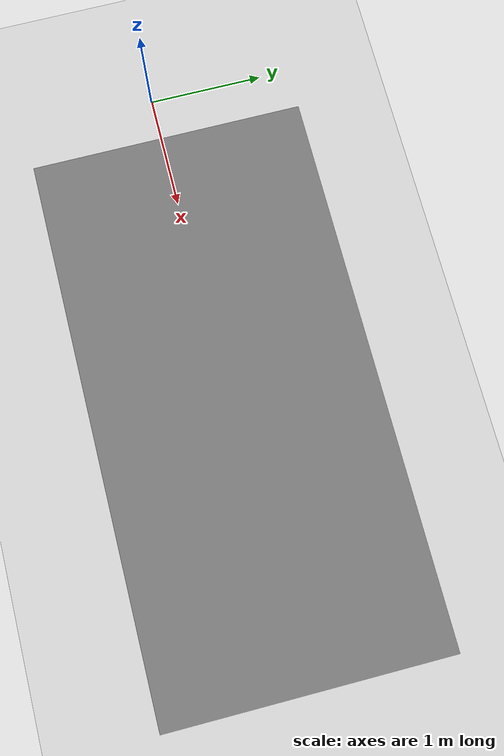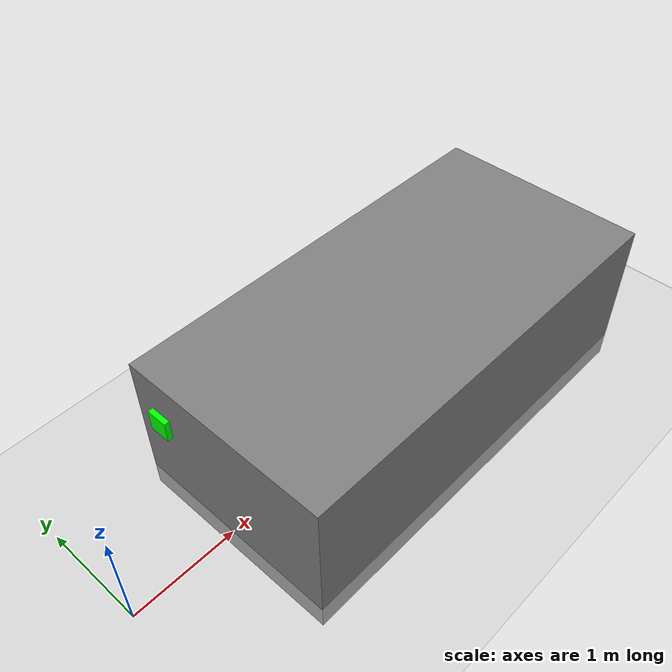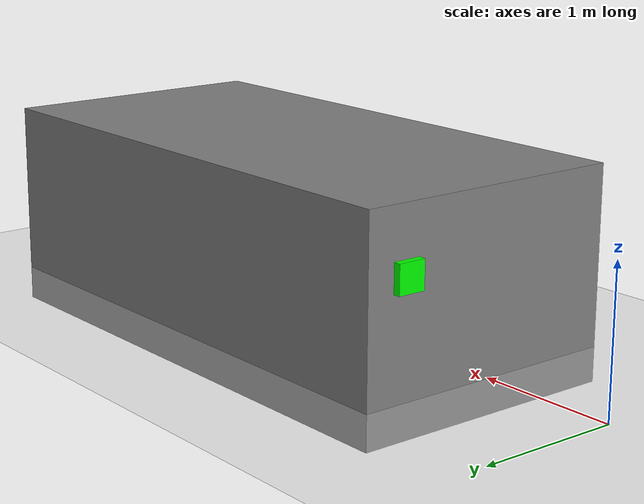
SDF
<?xml version="1.0" ?>
<sdf version="1.6">
  <world name="parking_lot">
    <!-- Gazebo Fortress 系统插件 -->
    <plugin filename="gz-sim-physics-system" name="gz::sim::systems::Physics"></plugin>
    <plugin filename="gz-sim-user-commands-system" name="gz::sim::systems::UserCommands"></plugin>
    <plugin filename="gz-sim-scene-broadcaster-system" name="gz::sim::systems::SceneBroadcaster"></plugin>
    <plugin filename="gz-sim-sensors-system" name="gz::sim::systems::Sensors">
      <render_engine>ogre2</render_engine>
    </plugin>

    <!-- Fuel 模型 -->
    <include>
      <uri>https://fuel.gazebosim.org/1.0/OpenRobotics/models/Ground Plane</uri>
    </include>
    <include>
      <uri>https://fuel.gazebosim.org/1.0/OpenRobotics/models/Sun</uri>
    </include>

    <!-- Car placeholder -->
    <model name="ev_car">
      <pose>3.0 0.0 0.5 0 0 0</pose>
      <static>true</static>
      <link name="link">
        <collision name="collision">
          <geometry>
            <box>
              <size>4.0 2.0 1.5</size>
            </box>
          </geometry>
        </collision>
        <visual name="visual">
          <geometry>
            <box>
              <size>4.0 2.0 1.5</size>
            </box>
          </geometry>
          <material>
            <ambient>0.5 0.5 0.5 1</ambient>
            <diffuse>0.5 0.5 0.5 1</diffuse>
          </material>
        </visual>
      </link>

      <!-- Charging Port placeholder -->
      <link name="charging_port">
        <pose>-2.0 0.7 0.3 0 0 0</pose>
        <visual name="port_visual">
          <geometry>
            <box>
              <size>0.1 0.2 0.2</size>
            </box>
          </geometry>
          <material>
            <ambient>0 1 0 1</ambient>
            <diffuse>0 1 0 1</diffuse>
          </material>
        </visual>
        <collision name="port_collision">
          <geometry>
            <box>
              <size>0.1 0.2 0.2</size>
            </box>
          </geometry>
        </collision>
      </link>
    </model>

    <gui fullscreen='0'>
      <camera name='user_camera'>
        <pose>8.0 -8.0 5.0 0 0.4 2.4</pose>
        <view_controller>orbit</view_controller>
      </camera>
    </gui>
  </world>
</sdf>
